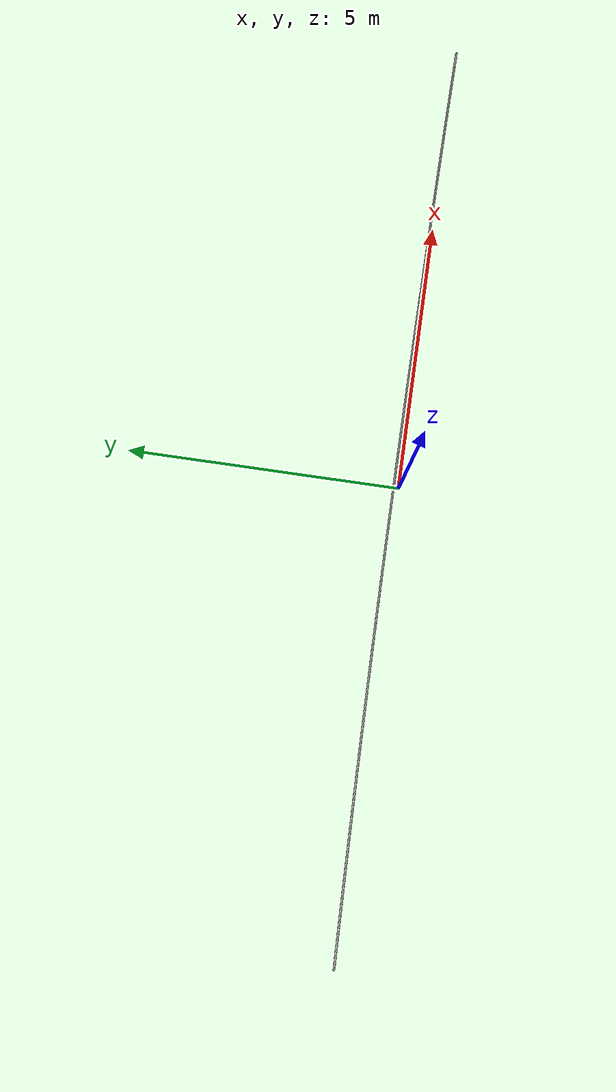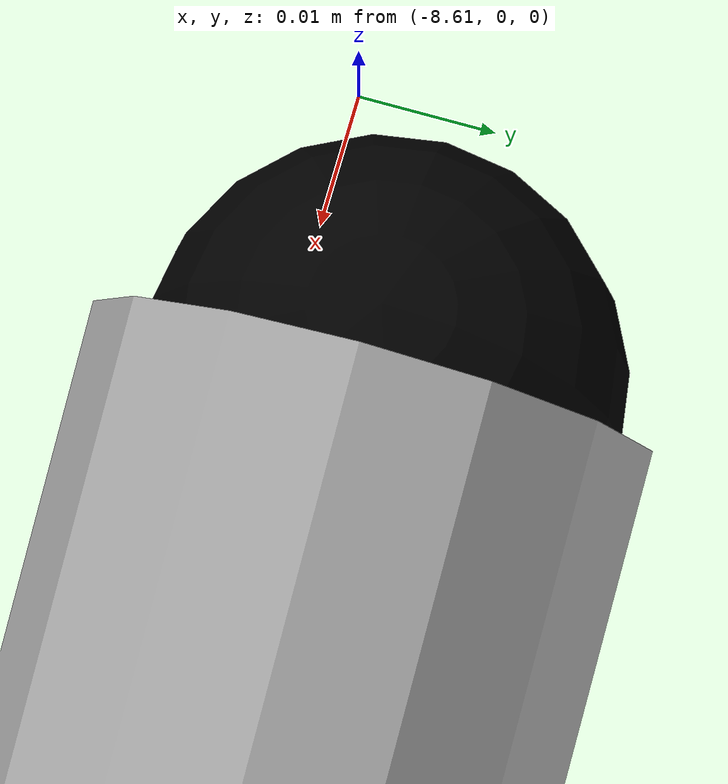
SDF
<?xml version='1.0'?>
<sdf version='1.4'>
  <model name="cable_torre">
 <static>true</static>
 <link name="mesh_link">
   <pose>0 0 0 0 0 1.57</pose>
	<inertial>
    <mass>1</mass>
 	</inertial>
        <visual name="visual">
        <geometry>
            <mesh><uri>model://cable_torre/meshes/Pieza1.stl</uri>
              <scale>0.035 0.025 0.035</scale>
            </mesh>
          </geometry>
        </visual>
        <collision name="collision">
          <geometry>
            <mesh><uri>model://cable_torre/meshes/Pieza1.stl</uri>
              <scale>0.035 0.025 0.035</scale>
            </mesh>
          </geometry>
        </collision>
      </link>

      <link name="link_0">
        <pose>-8.59 0.00735 0 0 0 0</pose>
        <collision name="sphere">
          <geometry>
            <sphere>
              <radius>0.015</radius>
            </sphere>
          </geometry>
        </collision>
        <visual name="sphere">
          <geometry>
            <sphere>
              <radius>0.0175</radius>
            </sphere>
          </geometry>
          <material>
            <ambient>0 0 0 1</ambient>
            <emissive>0 0 0 1</emissive>
            <diffuse>0 0 0 1</diffuse>
            <specular>1 1 1 1</specular>
          </material>

        </visual>
      </link>

      <link name="link_1">
        <pose>8.59 -0.00735 0 0 0 0</pose>
        <collision name="sphere">
          <geometry>
            <sphere>
              <radius>0.015</radius>
            </sphere>
          </geometry>
        </collision>
        <visual name="sphere">
          <geometry>
            <sphere>
              <radius>0.0175</radius>
            </sphere>
          </geometry>
          <material>
            <ambient>0 0 0 1</ambient>
            <emissive>0 0 0 1</emissive>
            <diffuse>0 0 0 1</diffuse>
            <specular>1 1 1 1</specular>
          </material>

        </visual>
      </link>

      <joint name="world" type="fixed">
        	<child>link_0</child>
        	<parent>world</parent>
      	</joint>

        <joint name="world" type="fixed">
            <child>link_1</child>
            <parent>world</parent>
          </joint>

      <joint name="joint_1" type="universal">
          <child>mesh_link</child>
          <parent>link_0</parent>
          <axis>
              <xyz>0 1 0</xyz>
              <limit>
                <lower>-0.39269908169872414</lower>
                <upper>0.39269908169872414</upper>
              </limit>
              <dynamics>
                <friction>50</friction>
              </dynamics>
          </axis>
          <physics>
              <ode>
                <cfm_damping>0</cfm_damping>
              </ode>
          </physics>
      </joint>

      <joint name="joint_2" type="universal">
          <child>mesh_link</child>
          <parent>link_1</parent>
          <axis>
              <xyz>0 1 0</xyz>
              <limit>
                <lower>-0.39269908169872414</lower>
                <upper>0.39269908169872414</upper>
              </limit>
              <dynamics>
                <friction>50</friction>
              </dynamics>
          </axis>
          <physics>
              <ode>
                <cfm_damping>0</cfm_damping>
              </ode>
          </physics>
      </joint>
    </model>
</sdf>
